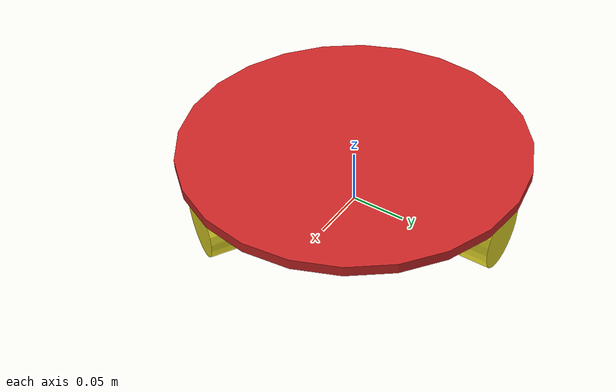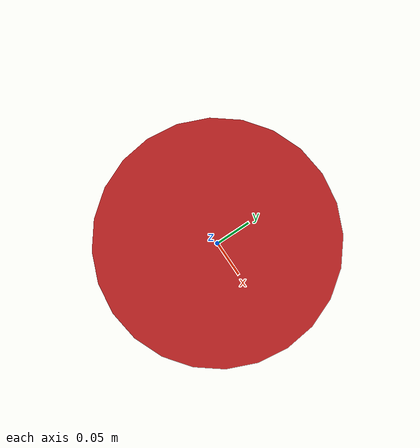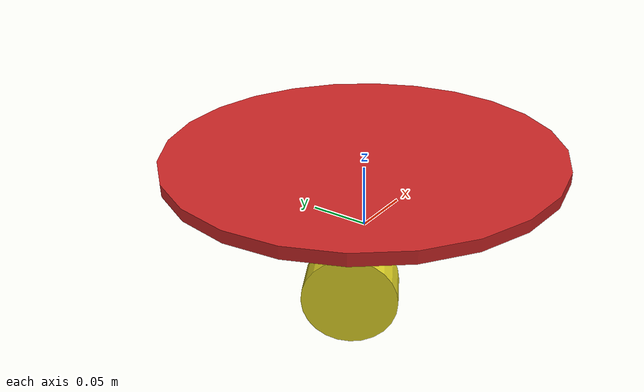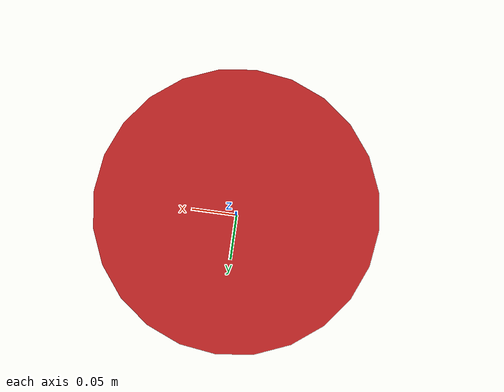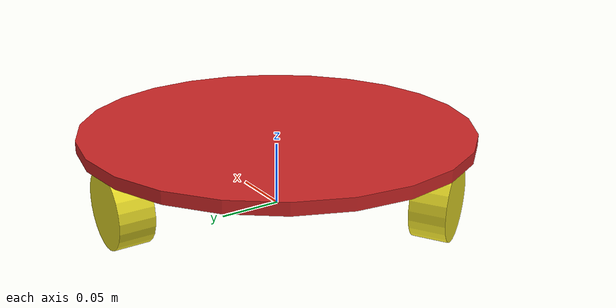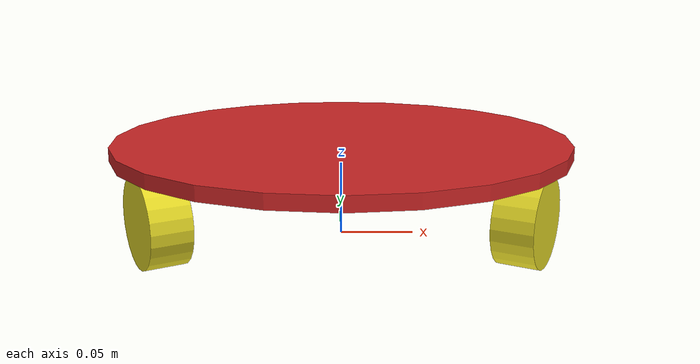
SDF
<?xml version='1.0'?>
<sdf version='1.6'>
  <model name='omniROS'>
    <plugin name="holonomic_model_plugin" filename="libholonomic_model_plugin.so">
        <pid_p>0.1</pid_p>
        <pid_i>0.000</pid_i>
        <pid_d>0.0</pid_d>
        <pid_output_max>1.76</pid_output_max>
        <PIDfrequency>60</PIDfrequency>
    </plugin>

    <link name='base_link'>
      <pose frame=''>0 -0 0.0645 0 -0 0</pose>
      <inertial>
        <mass>2.7</mass>
        <inertia>
          <ixx>0.00011205</ixx>
          <ixy>0</ixy>
          <ixz>0</ixz>
          <iyy>0.00011205</iyy>
          <iyz>0</iyz>
          <izz>0.00022396</izz>
        </inertia>
        <pose frame=''>0 0 0 0 -0 0</pose>
      </inertial>
      <self_collide>0</self_collide>
      <kinematic>0</kinematic>
      <gravity>1</gravity>
      <visual name='visual'>
        <pose frame=''>0 0 0 0 -0 0</pose>
        <geometry>
          <cylinder>
            <radius>0.1525</radius>
            <length>0.009</length>
          </cylinder>
        </geometry>
        <material>
          <lighting>1</lighting>
          <script>
            <uri>file://media/materials/scripts/gazebo.material</uri>
            <name>Gazebo/Red</name>
          </script>
          <ambient>1.0 0.0 0.0 1</ambient>
          <diffuse>1.0 0.0 0.0 1</diffuse>
          <specular>0.01 0.01 0.01 1</specular>
          <emissive>0 0 0 1</emissive>
          <shader type='vertex'>
            <normal_map>__default__</normal_map>
          </shader>
        </material>
        <cast_shadows>1</cast_shadows>
        <transparency>0</transparency>
      </visual>
      <collision name='base_link_collision'>
        <max_contacts>10</max_contacts>
        <pose frame=''>0 0 0 0 -0 0</pose>
        <geometry>
          <cylinder>
            <radius>0.1525</radius>
            <length>0.009</length>
          </cylinder>
        </geometry>
      </collision>
      <sensor name="lidar" type="ray">
        <pose>0 0 0.033 0 -0 0</pose>
        <ray>
          <scan>
            <horizontal>
              <samples>360</samples>
              <resolution>1</resolution>
              <min_angle>0.0</min_angle>
              <max_angle>6.2831</max_angle>
            </horizontal>
          </scan>
          <range>
            <min>0.12</min>
            <max>10</max>
            <resolution>0.01</resolution>
          </range>
          <noise>
            <type>gaussian</type>
            <mean>0.0</mean>
            <stddev>0.05</stddev>
          </noise>
        </ray>
        <plugin name="laser" filename="libgazebo_ros_laser.so">
          <topicName>/omniROS/lidarScan</topicName>
          <frameName>hokuyo_link</frameName>
        </plugin>
        <always_on>1</always_on>
        <update_rate>7</update_rate>
        <visualize>false</visualize>
      </sensor>
    </link>
    <link name='Wheel1'>
      <pose frame=''>-0 0.13 0.029 1.5708 -0 0</pose>
      <inertial>
        <mass>0.065</mass>
        <inertia>
          <ixx>1.33e-06</ixx>
          <ixy>0</ixy>
          <ixz>0</ixz>
          <iyy>1.33e-06</iyy>
          <iyz>0</iyz>
          <izz>0.000027</izz>
        </inertia>
        <pose frame=''>0 0 0 0 -0 0</pose>
      </inertial>
      <self_collide>0</self_collide>
      <kinematic>0</kinematic>
      <gravity>1</gravity>
      <visual name='visual'>
        <pose frame=''>0 0 0 0 -0 0</pose>
        <geometry>
          <cylinder>
            <radius>0.029</radius>
            <length>0.026</length>
          </cylinder>
        </geometry>
        <material>
          <lighting>1</lighting>
          <script>
            <uri>file://media/materials/scripts/gazebo.material</uri>
            <name>Gazebo/Yellow</name>
          </script>
          <ambient>0.5 0.5 0.0 1</ambient>
          <diffuse>0.7 0.7 0.7 1</diffuse>
          <specular>0.01 0.01 0.01 1</specular>
          <emissive>0 0 0 1</emissive>
          <shader type='vertex'>
            <normal_map>__default__</normal_map>
          </shader>
        </material>
        <cast_shadows>1</cast_shadows>
        <transparency>0</transparency>
      </visual>
      <collision name='collision'>
        <max_contacts>1</max_contacts>
        <pose frame=''>0 0 0 0 -0 0</pose>
        <geometry>
          <cylinder>
            <radius>0.029</radius>
            <length>0.026</length>
          </cylinder>
        </geometry>
        <surface>
          <friction>
            <torsional>
              <coefficient>0.0</coefficient>
            </torsional>
            <ode>
              <fdir1>1 1 0</fdir1>
              <mu>50</mu>
              <mu2>0</mu2>
            </ode>
          </friction>
        </surface>
      </collision>
    </link>
    <link name='Wheel2'>
      <pose frame=''>-0.112583 -0.065 0.029 1.5708 -0 2.0944</pose>
      <inertial>
        <mass>0.065</mass>
        <inertia>
          <ixx>1.33e-06</ixx>
          <ixy>0</ixy>
          <ixz>0</ixz>
          <iyy>1.33e-06</iyy>
          <iyz>0</iyz>
          <izz>2.41e-06</izz>
        </inertia>
        <pose frame=''>0 0 0 0 -0 0</pose>
      </inertial>
      <self_collide>0</self_collide>
      <kinematic>0</kinematic>
      <gravity>1</gravity>
      <visual name='visual'>
        <pose frame=''>0 0 0 0 -0 0</pose>
        <geometry>
          <cylinder>
            <radius>0.029</radius>
            <length>0.026</length>
          </cylinder>
        </geometry>
        <material>
          <lighting>1</lighting>
          <script>
            <uri>file://media/materials/scripts/gazebo.material</uri>
            <name>Gazebo/Yellow</name>
          </script>
          <ambient>0.5 0.5 0.0 1</ambient>
          <diffuse>0.7 0.7 0.7 1</diffuse>
          <specular>0.01 0.01 0.01 1</specular>
          <emissive>0 0 0 1</emissive>
          <shader type='vertex'>
            <normal_map>__default__</normal_map>
          </shader>
        </material>
        <cast_shadows>1</cast_shadows>
        <transparency>0</transparency>
      </visual>
      <collision name='collision'>
        <max_contacts>1</max_contacts>
        <pose frame=''>0 0 0 0 -0 0</pose>
        <geometry>
          <cylinder>
            <radius>0.029</radius>
            <length>0.026</length>
          </cylinder>
        </geometry>
        <surface>
          <friction>
            <ode>
              <fdir1>1 1 0</fdir1>
              <mu>50</mu>
              <mu2>0</mu2>
            </ode>
          </friction>
        </surface>
      </collision>
    </link>
    <link name='Wheel3'>
      <pose frame=''>0.112583 -0.065 0.029 1.5708 0 -2.0944</pose>
      <inertial>
        <mass>0.065</mass>
        <inertia>
          <ixx>1.33e-06</ixx>
          <ixy>0</ixy>
          <ixz>0</ixz>
          <iyy>1.33e-06</iyy>
          <iyz>0</iyz>
          <izz>2.41e-06</izz>
        </inertia>
        <pose frame=''>0 0 0 0 -0 0</pose>
      </inertial>
      <self_collide>0</self_collide>
      <kinematic>0</kinematic>
      <gravity>1</gravity>
      <visual name='visual'>
        <pose frame=''>0 0 0 0 -0 0</pose>
        <geometry>
          <cylinder>
            <radius>0.029</radius>
            <length>0.026</length>
          </cylinder>
        </geometry>
        <material>
          <lighting>1</lighting>
          <script>
            <uri>file://media/materials/scripts/gazebo.material</uri>
            <name>Gazebo/Yellow</name>
          </script>
          <ambient>0.5 0.5 0.0 1</ambient>
          <diffuse>0.7 0.7 0.7 1</diffuse>
          <specular>0.01 0.01 0.01 1</specular>
          <emissive>0 0 0 1</emissive>
          <shader type='vertex'>
            <normal_map>__default__</normal_map>
          </shader>
        </material>
        <cast_shadows>1</cast_shadows>
        <transparency>0</transparency>
      </visual>
      <collision name='collision'>
        <max_contacts>1</max_contacts>
        <pose frame=''>0 0 0 0 -0 0</pose>
        <geometry>
          <cylinder>
            <radius>0.029</radius>
            <length>0.026</length>
          </cylinder>
        </geometry>
        <surface>
          <friction>
            <ode>
              <fdir1>1 1 0</fdir1>
              <mu>50</mu>
              <mu2>0</mu2>
            </ode>
          </friction>
        </surface>
      </collision>
    </link>
    <joint name='Rotation1' type='revolute'>
      <parent>base_link</parent>
      <child>Wheel1</child>
      <pose frame=''>0 0 0 0 -0 0</pose>
      <axis>
        <xyz>0 0 1</xyz>
        <use_parent_model_frame>0</use_parent_model_frame>
        <limit>
          <lower>-1.79769e+308</lower>
          <upper>1.79769e+308</upper>
          <effort>2</effort>
          <velocity>50</velocity>
        </limit>
        <dynamics>
          <spring_reference>0</spring_reference>
          <spring_stiffness>0</spring_stiffness>
          <damping>0</damping>
          <friction>0</friction>
        </dynamics>
      </axis>
      <physics>
        <provide_feedback>1</provide_feedback>
        <ode>
          <limit>
            <cfm>0</cfm>
            <erp>0.2</erp>
          </limit>
          <suspension>
            <cfm>0</cfm>
            <erp>0.2</erp>
          </suspension>
        </ode>
      </physics>
    </joint>
    <joint name='Rotation2' type='revolute'>
      <parent>base_link</parent>
      <child>Wheel2</child>
      <pose frame=''>0 0 0 0 -0 0</pose>
      <axis>
        <xyz>0 0 1</xyz>
        <use_parent_model_frame>0</use_parent_model_frame>
        <limit>
          <lower>-1.79769e+308</lower>
          <upper>1.79769e+308</upper>
          <effort>2</effort>
          <velocity>50</velocity>
        </limit>
        <dynamics>
          <spring_reference>0</spring_reference>
          <spring_stiffness>0</spring_stiffness>
          <damping>0</damping>
          <friction>0</friction>
        </dynamics>
      </axis>
      <physics>
        <provide_feedback>1</provide_feedback>
        <ode>
          <limit>
            <cfm>0</cfm>
            <erp>0.2</erp>
          </limit>
          <suspension>
            <cfm>0</cfm>
            <erp>0.2</erp>
          </suspension>
        </ode>
      </physics>
    </joint>
    <joint name='Rotation3' type='revolute'>
      <parent>base_link</parent>
      <child>Wheel3</child>
      <pose frame=''>0 0 0 0 -0 0</pose>
      <axis>
        <xyz>0 0 1</xyz>
        <use_parent_model_frame>0</use_parent_model_frame>
        <limit>
          <lower>-1.79769e+308</lower>
          <upper>1.79769e+308</upper>
          <effort>2</effort>
          <velocity>50</velocity>
        </limit>
        <dynamics>
          <spring_reference>0</spring_reference>
          <spring_stiffness>0</spring_stiffness>
          <damping>0</damping>
          <friction>0</friction>
        </dynamics>
      </axis>
      <physics>
        <provide_feedback>1</provide_feedback>
        <ode>
          <limit>
            <cfm>0</cfm>
            <erp>0.2</erp>
          </limit>
          <suspension>
            <cfm>0</cfm>
            <erp>0.2</erp>
          </suspension>
        </ode>
      </physics>
    </joint>
    <static>0</static>
    <allow_auto_disable>1</allow_auto_disable>
  </model>
</sdf>
